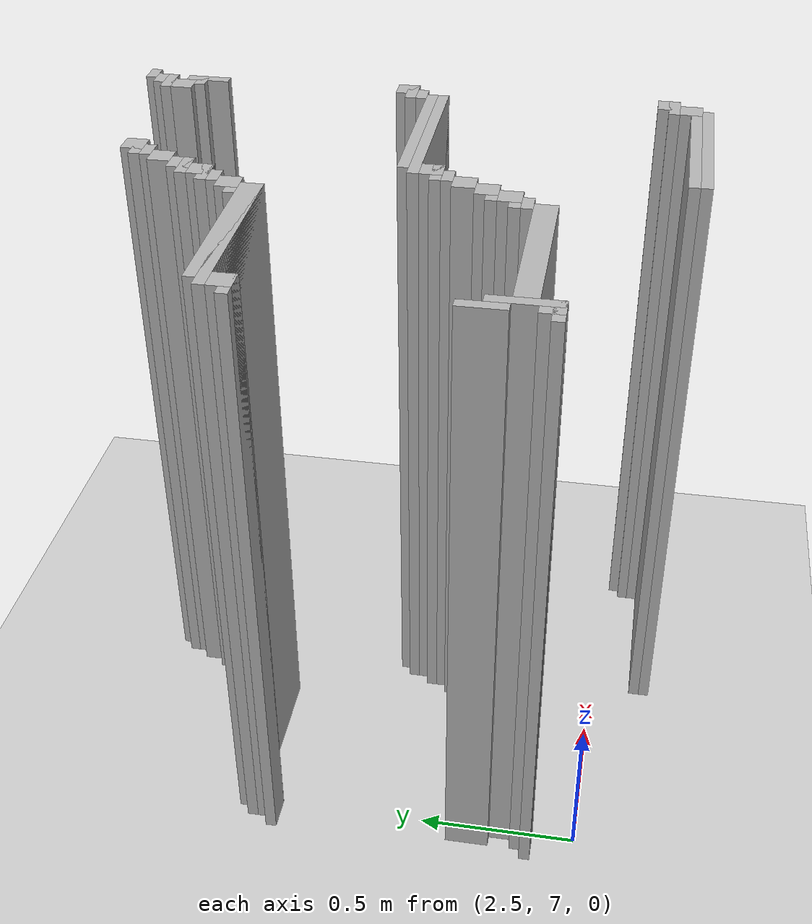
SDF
<sdf version="1.6">
 <world name="slam_world">
  <model name="ground_plane">
   <static>true</static>
   <link name="link">
    <collision name="collision">
     <geometry><plane><normal>0 0 1</normal><size>100 100</size></plane></geometry>
    </collision>
    <visual name="visual">
     <geometry><plane><normal>0 0 1</normal><size>100 100</size></plane></geometry>
     <material>
      <ambient>0.8 0.8 0.8 1</ambient>
      <diffuse>0.8 0.8 0.8 1</diffuse>
      <specular>0.8 0.8 0.8 1</specular>
     </material>
    </visual>
   </link>
  </model>
  <model name="wall_2929">
   <static>true</static>
   <pose>3.793503480278422 8.61368909512761 1.0 0 0 0</pose>
   <link name="link">
    <collision name="collision">
     <geometry><box><size>0.06960556844547564 0.03480278422273782 2.0</size></box></geometry>
    </collision>
    <visual name="visual">
     <geometry><box><size>0.06960556844547564 0.03480278422273782 2.0</size></box></geometry>
     <material><ambient>0.5 0.5 0.5 1</ambient><diffuse>0.7 0.7 0.7 1</diffuse></material>
    </visual>
   </link>
  </model>
  <model name="wall_2937">
   <static>true</static>
   <pose>3.7587006960556844 8.561484918793504 1.0 0 0 0</pose>
   <link name="link">
    <collision name="collision">
     <geometry><box><size>0.06960556844547564 0.06960556844547564 2.0</size></box></geometry>
    </collision>
    <visual name="visual">
     <geometry><box><size>0.06960556844547564 0.06960556844547564 2.0</size></box></geometry>
     <material><ambient>0.5 0.5 0.5 1</ambient><diffuse>0.7 0.7 0.7 1</diffuse></material>
    </visual>
   </link>
  </model>
  <model name="wall_2950">
   <static>true</static>
   <pose>3.741299303944315 8.544083526682135 1.0 0 0 0</pose>
   <link name="link">
    <collision name="collision">
     <geometry><box><size>0.10440835266821345 0.03480278422273782 2.0</size></box></geometry>
    </collision>
    <visual name="visual">
     <geometry><box><size>0.10440835266821345 0.03480278422273782 2.0</size></box></geometry>
     <material><ambient>0.5 0.5 0.5 1</ambient><diffuse>0.7 0.7 0.7 1</diffuse></material>
    </visual>
   </link>
  </model>
  <model name="wall_2962">
   <static>true</static>
   <pose>3.236658932714617 8.491879350348027 1.0 0 0 0</pose>
   <link name="link">
    <collision name="collision">
     <geometry><box><size>0.06960556844547564 0.06960556844547564 2.0</size></box></geometry>
    </collision>
    <visual name="visual">
     <geometry><box><size>0.06960556844547564 0.06960556844547564 2.0</size></box></geometry>
     <material><ambient>0.5 0.5 0.5 1</ambient><diffuse>0.7 0.7 0.7 1</diffuse></material>
    </visual>
   </link>
  </model>
  <model name="wall_2963">
   <static>true</static>
   <pose>3.7238979118329465 8.491879350348027 1.0 0 0 0</pose>
   <link name="link">
    <collision name="collision">
     <geometry><box><size>0.06960556844547564 0.06960556844547564 2.0</size></box></geometry>
    </collision>
    <visual name="visual">
     <geometry><box><size>0.06960556844547564 0.06960556844547564 2.0</size></box></geometry>
     <material><ambient>0.5 0.5 0.5 1</ambient><diffuse>0.7 0.7 0.7 1</diffuse></material>
    </visual>
   </link>
  </model>
  <model name="wall_2974">
   <static>true</static>
   <pose>3.219257540603248 8.474477958236658 1.0 0 0 0</pose>
   <link name="link">
    <collision name="collision">
     <geometry><box><size>0.10440835266821345 0.03480278422273782 2.0</size></box></geometry>
    </collision>
    <visual name="visual">
     <geometry><box><size>0.10440835266821345 0.03480278422273782 2.0</size></box></geometry>
     <material><ambient>0.5 0.5 0.5 1</ambient><diffuse>0.7 0.7 0.7 1</diffuse></material>
    </visual>
   </link>
  </model>
  <model name="wall_2975">
   <static>true</static>
   <pose>3.776102088167053 8.422273781902552 1.0 0 0 0</pose>
   <link name="link">
    <collision name="collision">
     <geometry><box><size>0.03480278422273782 0.13921113689095127 2.0</size></box></geometry>
    </collision>
    <visual name="visual">
     <geometry><box><size>0.03480278422273782 0.13921113689095127 2.0</size></box></geometry>
     <material><ambient>0.5 0.5 0.5 1</ambient><diffuse>0.7 0.7 0.7 1</diffuse></material>
    </visual>
   </link>
  </model>
  <model name="wall_2988">
   <static>true</static>
   <pose>3.201856148491879 8.43967517401392 1.0 0 0 0</pose>
   <link name="link">
    <collision name="collision">
     <geometry><box><size>0.06960556844547564 0.03480278422273782 2.0</size></box></geometry>
    </collision>
    <visual name="visual">
     <geometry><box><size>0.06960556844547564 0.03480278422273782 2.0</size></box></geometry>
     <material><ambient>0.5 0.5 0.5 1</ambient><diffuse>0.7 0.7 0.7 1</diffuse></material>
    </visual>
   </link>
  </model>
  <model name="wall_2989">
   <static>true</static>
   <pose>3.7587006960556844 8.43967517401392 1.0 0 0 0</pose>
   <link name="link">
    <collision name="collision">
     <geometry><box><size>0.06960556844547564 0.03480278422273782 2.0</size></box></geometry>
    </collision>
    <visual name="visual">
     <geometry><box><size>0.06960556844547564 0.03480278422273782 2.0</size></box></geometry>
     <material><ambient>0.5 0.5 0.5 1</ambient><diffuse>0.7 0.7 0.7 1</diffuse></material>
    </visual>
   </link>
  </model>
  <model name="wall_3003">
   <static>true</static>
   <pose>3.167053364269141 8.387470997679815 1.0 0 0 0</pose>
   <link name="link">
    <collision name="collision">
     <geometry><box><size>0.06960556844547564 0.06960556844547564 2.0</size></box></geometry>
    </collision>
    <visual name="visual">
     <geometry><box><size>0.06960556844547564 0.06960556844547564 2.0</size></box></geometry>
     <material><ambient>0.5 0.5 0.5 1</ambient><diffuse>0.7 0.7 0.7 1</diffuse></material>
    </visual>
   </link>
  </model>
  <model name="wall_3018">
   <static>true</static>
   <pose>3.1322505800464038 8.317865429234338 1.0 0 0 0</pose>
   <link name="link">
    <collision name="collision">
     <geometry><box><size>0.06960556844547564 0.06960556844547564 2.0</size></box></geometry>
    </collision>
    <visual name="visual">
     <geometry><box><size>0.06960556844547564 0.06960556844547564 2.0</size></box></geometry>
     <material><ambient>0.5 0.5 0.5 1</ambient><diffuse>0.7 0.7 0.7 1</diffuse></material>
    </visual>
   </link>
  </model>
  <model name="wall_3033">
   <static>true</static>
   <pose>3.1148491879350346 8.30046403712297 1.0 0 0 0</pose>
   <link name="link">
    <collision name="collision">
     <geometry><box><size>0.10440835266821345 0.03480278422273782 2.0</size></box></geometry>
    </collision>
    <visual name="visual">
     <geometry><box><size>0.10440835266821345 0.03480278422273782 2.0</size></box></geometry>
     <material><ambient>0.5 0.5 0.5 1</ambient><diffuse>0.7 0.7 0.7 1</diffuse></material>
    </visual>
   </link>
  </model>
  <model name="wall_3048">
   <static>true</static>
   <pose>3.097447795823666 8.248259860788863 1.0 0 0 0</pose>
   <link name="link">
    <collision name="collision">
     <geometry><box><size>0.06960556844547564 0.06960556844547564 2.0</size></box></geometry>
    </collision>
    <visual name="visual">
     <geometry><box><size>0.06960556844547564 0.06960556844547564 2.0</size></box></geometry>
     <material><ambient>0.5 0.5 0.5 1</ambient><diffuse>0.7 0.7 0.7 1</diffuse></material>
    </visual>
   </link>
  </model>
  <model name="wall_3058">
   <static>true</static>
   <pose>3.0800464037122968 8.230858468677495 1.0 0 0 0</pose>
   <link name="link">
    <collision name="collision">
     <geometry><box><size>0.10440835266821345 0.03480278422273782 2.0</size></box></geometry>
    </collision>
    <visual name="visual">
     <geometry><box><size>0.10440835266821345 0.03480278422273782 2.0</size></box></geometry>
     <material><ambient>0.5 0.5 0.5 1</ambient><diffuse>0.7 0.7 0.7 1</diffuse></material>
    </visual>
   </link>
  </model>
  <model name="wall_3073">
   <static>true</static>
   <pose>3.062645011600928 8.196055684454755 1.0 0 0 0</pose>
   <link name="link">
    <collision name="collision">
     <geometry><box><size>0.06960556844547564 0.03480278422273782 2.0</size></box></geometry>
    </collision>
    <visual name="visual">
     <geometry><box><size>0.06960556844547564 0.03480278422273782 2.0</size></box></geometry>
     <material><ambient>0.5 0.5 0.5 1</ambient><diffuse>0.7 0.7 0.7 1</diffuse></material>
    </visual>
   </link>
  </model>
  <model name="wall_3082">
   <static>true</static>
   <pose>3.02784222737819 8.14385150812065 1.0 0 0 0</pose>
   <link name="link">
    <collision name="collision">
     <geometry><box><size>0.06960556844547564 0.06960556844547564 2.0</size></box></geometry>
    </collision>
    <visual name="visual">
     <geometry><box><size>0.06960556844547564 0.06960556844547564 2.0</size></box></geometry>
     <material><ambient>0.5 0.5 0.5 1</ambient><diffuse>0.7 0.7 0.7 1</diffuse></material>
    </visual>
   </link>
  </model>
  <model name="wall_3096">
   <static>true</static>
   <pose>3.010440835266821 8.12645011600928 1.0 0 0 0</pose>
   <link name="link">
    <collision name="collision">
     <geometry><box><size>0.10440835266821345 0.03480278422273782 2.0</size></box></geometry>
    </collision>
    <visual name="visual">
     <geometry><box><size>0.10440835266821345 0.03480278422273782 2.0</size></box></geometry>
     <material><ambient>0.5 0.5 0.5 1</ambient><diffuse>0.7 0.7 0.7 1</diffuse></material>
    </visual>
   </link>
  </model>
  <model name="wall_3111">
   <static>true</static>
   <pose>2.7494199535962878 8.074245939675174 1.0 0 0 0</pose>
   <link name="link">
    <collision name="collision">
     <geometry><box><size>0.5568445475638051 0.06960556844547564 2.0</size></box></geometry>
    </collision>
    <visual name="visual">
     <geometry><box><size>0.5568445475638051 0.06960556844547564 2.0</size></box></geometry>
     <material><ambient>0.5 0.5 0.5 1</ambient><diffuse>0.7 0.7 0.7 1</diffuse></material>
    </visual>
   </link>
  </model>
  <model name="wall_3123">
   <static>true</static>
   <pose>2.7320185614849186 8.056844547563804 1.0 0 0 0</pose>
   <link name="link">
    <collision name="collision">
     <geometry><box><size>0.5916473317865429 0.03480278422273782 2.0</size></box></geometry>
    </collision>
    <visual name="visual">
     <geometry><box><size>0.5916473317865429 0.03480278422273782 2.0</size></box></geometry>
     <material><ambient>0.5 0.5 0.5 1</ambient><diffuse>0.7 0.7 0.7 1</diffuse></material>
    </visual>
   </link>
  </model>
  <model name="wall_3137">
   <static>true</static>
   <pose>2.470997679814385 8.004640371229698 1.0 0 0 0</pose>
   <link name="link">
    <collision name="collision">
     <geometry><box><size>0.06960556844547564 0.06960556844547564 2.0</size></box></geometry>
    </collision>
    <visual name="visual">
     <geometry><box><size>0.06960556844547564 0.06960556844547564 2.0</size></box></geometry>
     <material><ambient>0.5 0.5 0.5 1</ambient><diffuse>0.7 0.7 0.7 1</diffuse></material>
    </visual>
   </link>
  </model>
  <model name="wall_3153">
   <static>true</static>
   <pose>2.453596287703016 7.987238979118329 1.0 0 0 0</pose>
   <link name="link">
    <collision name="collision">
     <geometry><box><size>0.10440835266821345 0.03480278422273782 2.0</size></box></geometry>
    </collision>
    <visual name="visual">
     <geometry><box><size>0.10440835266821345 0.03480278422273782 2.0</size></box></geometry>
     <material><ambient>0.5 0.5 0.5 1</ambient><diffuse>0.7 0.7 0.7 1</diffuse></material>
    </visual>
   </link>
  </model>
  <model name="wall_3228">
   <static>true</static>
   <pose>3.793503480278422 7.761020881670533 1.0 0 0 0</pose>
   <link name="link">
    <collision name="collision">
     <geometry><box><size>0.06960556844547564 0.06960556844547564 2.0</size></box></geometry>
    </collision>
    <visual name="visual">
     <geometry><box><size>0.06960556844547564 0.06960556844547564 2.0</size></box></geometry>
     <material><ambient>0.5 0.5 0.5 1</ambient><diffuse>0.7 0.7 0.7 1</diffuse></material>
    </visual>
   </link>
  </model>
  <model name="wall_3238">
   <static>true</static>
   <pose>3.776102088167053 7.743619489559165 1.0 0 0 0</pose>
   <link name="link">
    <collision name="collision">
     <geometry><box><size>0.10440835266821345 0.03480278422273782 2.0</size></box></geometry>
    </collision>
    <visual name="visual">
     <geometry><box><size>0.10440835266821345 0.03480278422273782 2.0</size></box></geometry>
     <material><ambient>0.5 0.5 0.5 1</ambient><diffuse>0.7 0.7 0.7 1</diffuse></material>
    </visual>
   </link>
  </model>
  <model name="wall_3253">
   <static>true</static>
   <pose>3.7587006960556844 7.708816705336426 1.0 0 0 0</pose>
   <link name="link">
    <collision name="collision">
     <geometry><box><size>0.06960556844547564 0.03480278422273782 2.0</size></box></geometry>
    </collision>
    <visual name="visual">
     <geometry><box><size>0.06960556844547564 0.03480278422273782 2.0</size></box></geometry>
     <material><ambient>0.5 0.5 0.5 1</ambient><diffuse>0.7 0.7 0.7 1</diffuse></material>
    </visual>
   </link>
  </model>
  <model name="wall_3263">
   <static>true</static>
   <pose>3.480278422273782 7.65661252900232 1.0 0 0 0</pose>
   <link name="link">
    <collision name="collision">
     <geometry><box><size>0.5568445475638051 0.06960556844547564 2.0</size></box></geometry>
    </collision>
    <visual name="visual">
     <geometry><box><size>0.5568445475638051 0.06960556844547564 2.0</size></box></geometry>
     <material><ambient>0.5 0.5 0.5 1</ambient><diffuse>0.7 0.7 0.7 1</diffuse></material>
    </visual>
   </link>
  </model>
  <model name="wall_3279">
   <static>true</static>
   <pose>3.4628770301624128 7.6392111368909505 1.0 0 0 0</pose>
   <link name="link">
    <collision name="collision">
     <geometry><box><size>0.5916473317865429 0.03480278422273782 2.0</size></box></geometry>
    </collision>
    <visual name="visual">
     <geometry><box><size>0.5916473317865429 0.03480278422273782 2.0</size></box></geometry>
     <material><ambient>0.5 0.5 0.5 1</ambient><diffuse>0.7 0.7 0.7 1</diffuse></material>
    </visual>
   </link>
  </model>
  <model name="wall_3294">
   <static>true</static>
   <pose>3.201856148491879 7.587006960556844 1.0 0 0 0</pose>
   <link name="link">
    <collision name="collision">
     <geometry><box><size>0.06960556844547564 0.06960556844547564 2.0</size></box></geometry>
    </collision>
    <visual name="visual">
     <geometry><box><size>0.06960556844547564 0.06960556844547564 2.0</size></box></geometry>
     <material><ambient>0.5 0.5 0.5 1</ambient><diffuse>0.7 0.7 0.7 1</diffuse></material>
    </visual>
   </link>
  </model>
  <model name="wall_3310">
   <static>true</static>
   <pose>3.1844547563805103 7.569605568445476 1.0 0 0 0</pose>
   <link name="link">
    <collision name="collision">
     <geometry><box><size>0.10440835266821345 0.03480278422273782 2.0</size></box></geometry>
    </collision>
    <visual name="visual">
     <geometry><box><size>0.10440835266821345 0.03480278422273782 2.0</size></box></geometry>
     <material><ambient>0.5 0.5 0.5 1</ambient><diffuse>0.7 0.7 0.7 1</diffuse></material>
    </visual>
   </link>
  </model>
  <model name="wall_3325">
   <static>true</static>
   <pose>3.167053364269141 7.534802784222737 1.0 0 0 0</pose>
   <link name="link">
    <collision name="collision">
     <geometry><box><size>0.06960556844547564 0.03480278422273782 2.0</size></box></geometry>
    </collision>
    <visual name="visual">
     <geometry><box><size>0.06960556844547564 0.03480278422273782 2.0</size></box></geometry>
     <material><ambient>0.5 0.5 0.5 1</ambient><diffuse>0.7 0.7 0.7 1</diffuse></material>
    </visual>
   </link>
  </model>
  <model name="wall_3337">
   <static>true</static>
   <pose>3.1322505800464038 7.48259860788863 1.0 0 0 0</pose>
   <link name="link">
    <collision name="collision">
     <geometry><box><size>0.06960556844547564 0.06960556844547564 2.0</size></box></geometry>
    </collision>
    <visual name="visual">
     <geometry><box><size>0.06960556844547564 0.06960556844547564 2.0</size></box></geometry>
     <material><ambient>0.5 0.5 0.5 1</ambient><diffuse>0.7 0.7 0.7 1</diffuse></material>
    </visual>
   </link>
  </model>
  <model name="wall_3353">
   <static>true</static>
   <pose>3.097447795823666 7.412993039443156 1.0 0 0 0</pose>
   <link name="link">
    <collision name="collision">
     <geometry><box><size>0.06960556844547564 0.06960556844547564 2.0</size></box></geometry>
    </collision>
    <visual name="visual">
     <geometry><box><size>0.06960556844547564 0.06960556844547564 2.0</size></box></geometry>
     <material><ambient>0.5 0.5 0.5 1</ambient><diffuse>0.7 0.7 0.7 1</diffuse></material>
    </visual>
   </link>
  </model>
  <model name="wall_3368">
   <static>true</static>
   <pose>2.453596287703016 7.34338747099768 1.0 0 0 0</pose>
   <link name="link">
    <collision name="collision">
     <geometry><box><size>0.03480278422273782 0.13921113689095127 2.0</size></box></geometry>
    </collision>
    <visual name="visual">
     <geometry><box><size>0.03480278422273782 0.13921113689095127 2.0</size></box></geometry>
     <material><ambient>0.5 0.5 0.5 1</ambient><diffuse>0.7 0.7 0.7 1</diffuse></material>
    </visual>
   </link>
  </model>
  <model name="wall_3369">
   <static>true</static>
   <pose>3.0800464037122968 7.395591647331786 1.0 0 0 0</pose>
   <link name="link">
    <collision name="collision">
     <geometry><box><size>0.10440835266821345 0.03480278422273782 2.0</size></box></geometry>
    </collision>
    <visual name="visual">
     <geometry><box><size>0.10440835266821345 0.03480278422273782 2.0</size></box></geometry>
     <material><ambient>0.5 0.5 0.5 1</ambient><diffuse>0.7 0.7 0.7 1</diffuse></material>
    </visual>
   </link>
  </model>
  <model name="wall_3383">
   <static>true</static>
   <pose>3.062645011600928 7.34338747099768 1.0 0 0 0</pose>
   <link name="link">
    <collision name="collision">
     <geometry><box><size>0.06960556844547564 0.06960556844547564 2.0</size></box></geometry>
    </collision>
    <visual name="visual">
     <geometry><box><size>0.06960556844547564 0.06960556844547564 2.0</size></box></geometry>
     <material><ambient>0.5 0.5 0.5 1</ambient><diffuse>0.7 0.7 0.7 1</diffuse></material>
    </visual>
   </link>
  </model>
  <model name="wall_3393">
   <static>true</static>
   <pose>2.488399071925754 7.238979118329466 1.0 0 0 0</pose>
   <link name="link">
    <collision name="collision">
     <geometry><box><size>0.03480278422273782 0.2088167053364269 2.0</size></box></geometry>
    </collision>
    <visual name="visual">
     <geometry><box><size>0.03480278422273782 0.2088167053364269 2.0</size></box></geometry>
     <material><ambient>0.5 0.5 0.5 1</ambient><diffuse>0.7 0.7 0.7 1</diffuse></material>
    </visual>
   </link>
  </model>
  <model name="wall_3394">
   <static>true</static>
   <pose>3.045243619489559 7.32598607888631 1.0 0 0 0</pose>
   <link name="link">
    <collision name="collision">
     <geometry><box><size>0.10440835266821345 0.03480278422273782 2.0</size></box></geometry>
    </collision>
    <visual name="visual">
     <geometry><box><size>0.10440835266821345 0.03480278422273782 2.0</size></box></geometry>
     <material><ambient>0.5 0.5 0.5 1</ambient><diffuse>0.7 0.7 0.7 1</diffuse></material>
    </visual>
   </link>
  </model>
  <model name="wall_3408">
   <static>true</static>
   <pose>3.02784222737819 7.291183294663573 1.0 0 0 0</pose>
   <link name="link">
    <collision name="collision">
     <geometry><box><size>0.06960556844547564 0.03480278422273782 2.0</size></box></geometry>
    </collision>
    <visual name="visual">
     <geometry><box><size>0.06960556844547564 0.03480278422273782 2.0</size></box></geometry>
     <material><ambient>0.5 0.5 0.5 1</ambient><diffuse>0.7 0.7 0.7 1</diffuse></material>
    </visual>
   </link>
  </model>
  <model name="wall_3417">
   <static>true</static>
   <pose>2.7668213457076565 7.238979118329466 1.0 0 0 0</pose>
   <link name="link">
    <collision name="collision">
     <geometry><box><size>0.5220417633410672 0.06960556844547564 2.0</size></box></geometry>
    </collision>
    <visual name="visual">
     <geometry><box><size>0.5220417633410672 0.06960556844547564 2.0</size></box></geometry>
     <material><ambient>0.5 0.5 0.5 1</ambient><diffuse>0.7 0.7 0.7 1</diffuse></material>
    </visual>
   </link>
  </model>
  <model name="wall_3429">
   <static>true</static>
   <pose>2.470997679814385 7.16937354988399 1.0 0 0 0</pose>
   <link name="link">
    <collision name="collision">
     <geometry><box><size>0.06960556844547564 0.06960556844547564 2.0</size></box></geometry>
    </collision>
    <visual name="visual">
     <geometry><box><size>0.06960556844547564 0.06960556844547564 2.0</size></box></geometry>
     <material><ambient>0.5 0.5 0.5 1</ambient><diffuse>0.7 0.7 0.7 1</diffuse></material>
    </visual>
   </link>
  </model>
  <model name="wall_3441">
   <static>true</static>
   <pose>2.453596287703016 7.151972157772621 1.0 0 0 0</pose>
   <link name="link">
    <collision name="collision">
     <geometry><box><size>0.10440835266821345 0.03480278422273782 2.0</size></box></geometry>
    </collision>
    <visual name="visual">
     <geometry><box><size>0.10440835266821345 0.03480278422273782 2.0</size></box></geometry>
     <material><ambient>0.5 0.5 0.5 1</ambient><diffuse>0.7 0.7 0.7 1</diffuse></material>
    </visual>
   </link>
  </model>
  <model name="wall_3504">
   <static>true</static>
   <pose>3.793503480278422 6.9257540603248255 1.0 0 0 0</pose>
   <link name="link">
    <collision name="collision">
     <geometry><box><size>0.06960556844547564 0.06960556844547564 2.0</size></box></geometry>
    </collision>
    <visual name="visual">
     <geometry><box><size>0.06960556844547564 0.06960556844547564 2.0</size></box></geometry>
     <material><ambient>0.5 0.5 0.5 1</ambient><diffuse>0.7 0.7 0.7 1</diffuse></material>
    </visual>
   </link>
  </model>
  <model name="wall_3516">
   <static>true</static>
   <pose>3.776102088167053 6.908352668213457 1.0 0 0 0</pose>
   <link name="link">
    <collision name="collision">
     <geometry><box><size>0.10440835266821345 0.03480278422273782 2.0</size></box></geometry>
    </collision>
    <visual name="visual">
     <geometry><box><size>0.10440835266821345 0.03480278422273782 2.0</size></box></geometry>
     <material><ambient>0.5 0.5 0.5 1</ambient><diffuse>0.7 0.7 0.7 1</diffuse></material>
    </visual>
   </link>
  </model>
  <model name="wall_3527">
   <static>true</static>
   <pose>3.7587006960556844 6.85614849187935 1.0 0 0 0</pose>
   <link name="link">
    <collision name="collision">
     <geometry><box><size>0.06960556844547564 0.06960556844547564 2.0</size></box></geometry>
    </collision>
    <visual name="visual">
     <geometry><box><size>0.06960556844547564 0.06960556844547564 2.0</size></box></geometry>
     <material><ambient>0.5 0.5 0.5 1</ambient><diffuse>0.7 0.7 0.7 1</diffuse></material>
    </visual>
   </link>
  </model>
  <model name="wall_3535">
   <static>true</static>
   <pose>3.4976798143851506 6.838747099767981 1.0 0 0 0</pose>
   <link name="link">
    <collision name="collision">
     <geometry><box><size>0.5916473317865429 0.03480278422273782 2.0</size></box></geometry>
    </collision>
    <visual name="visual">
     <geometry><box><size>0.5916473317865429 0.03480278422273782 2.0</size></box></geometry>
     <material><ambient>0.5 0.5 0.5 1</ambient><diffuse>0.7 0.7 0.7 1</diffuse></material>
    </visual>
   </link>
  </model>
  <model name="wall_3548">
   <static>true</static>
   <pose>3.480278422273782 6.803944315545244 1.0 0 0 0</pose>
   <link name="link">
    <collision name="collision">
     <geometry><box><size>0.5568445475638051 0.03480278422273782 2.0</size></box></geometry>
    </collision>
    <visual name="visual">
     <geometry><box><size>0.5568445475638051 0.03480278422273782 2.0</size></box></geometry>
     <material><ambient>0.5 0.5 0.5 1</ambient><diffuse>0.7 0.7 0.7 1</diffuse></material>
    </visual>
   </link>
  </model>
 </world>
</sdf>
